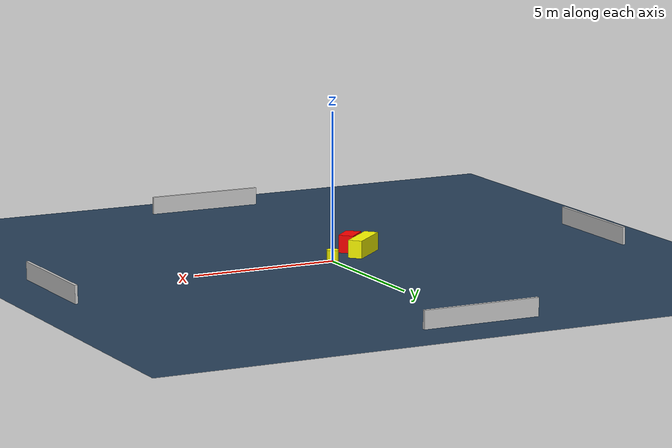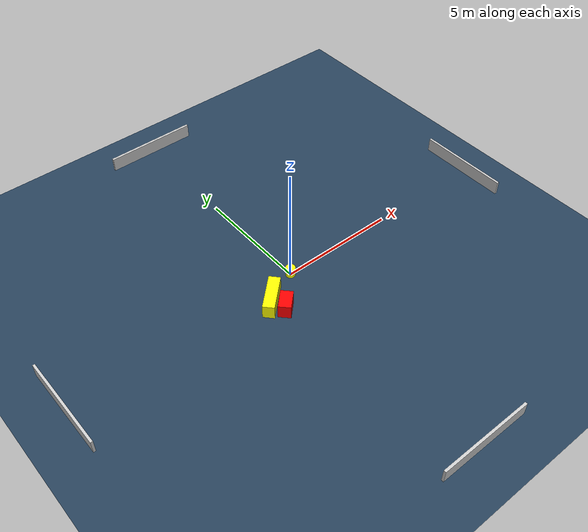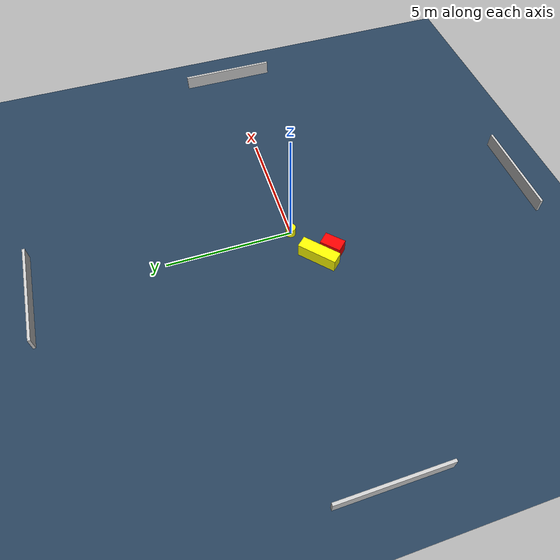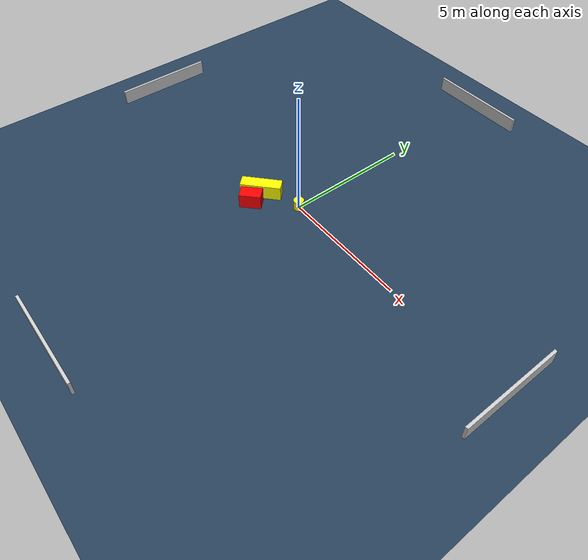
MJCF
<?xml version="1.0" ?>
<mujoco model="generated_environment">
  <option timestep="0.01" integrator="RK4" cone="elliptic"/>
  <default>
    <geom density="1"/>
  </default>
  <asset>
    <texture builtin="gradient" height="3072" name="skybox" rgb1="0.3 0.5 0.7" rgb2="0 0 0" type="skybox" width="512"/>
    <texture builtin="checker" height="300" name="groundplane" rgb1="0.2 0.3 0.4" rgb2="0.1 0.2 0.3" type="2d" width="300"/>
    <material name="groundplane" reflectance="0.2" texrepeat="5 5" texture="groundplane"/>
  </asset>
  <worldbody>
    <light dir="0 0 -1" directional="true" pos="0 0 1.5"/>
    <geom condim="3" friction="0.5 0.005 0.001" material="groundplane" name="floor" pos="0 0 0" size="0 0 0.05" type="plane"/>
    <body name="walls">
      <geom name="wall_1" condim="4" pos="-10.0 0.0 0.3" rgba="0.800000011920929 0.800000011920929 0.800000011920929 1.0" size="0.05 2.0 0.3" type="box"/>
      <geom name="wall_2" condim="4" pos="10.0 0.0 0.3" rgba="0.800000011920929 0.800000011920929 0.800000011920929 1.0" size="0.05 2.0 0.3" type="box"/>
      <geom name="wall_3" condim="4" pos="0.0 -10.0 0.3" rgba="0.800000011920929 0.800000011920929 0.800000011920929 1.0" size="2.0 0.05 0.3" type="box"/>
      <geom name="wall_4" condim="4" pos="0.0 10.0 0.3" rgba="0.800000011920929 0.800000011920929 0.800000011920929 1.0" size="2.0 0.05 0.3" type="box"/>
    </body>
    <body name="robot">
      <joint name="joint_x" type="slide" pos="0 0 0" axis="1 0 0"/>
      <joint name="joint_y" type="slide" pos="0 0 0" axis="0 1 0"/>
      <geom name="robot" type="cylinder" pos="0.0 0.0 0.2" size="0.2 0.2 0.0" mass="5.0" friction="1.0 0.005 0.0001" condim="4" rgba="1.0 1.0 0.0 1.0"/>
    </body>
    <body name="obstacle_1_movable">
      <geom name="obstacle_1_movable" condim="4" pos="-1.4768838994942113 -0.6582325555037863 0.3" euler="0 0 312.5125870882704" friction="0.0 0.005 0.001" rgba="1.0 1.0 0.0 1.0" size="0.23790414966197443 0.7855873062750862 0.3" type="box" mass="0.1"/>
      <joint type="free"/>
    </body>
    <body name="obstacle_2_static">
      <geom name="obstacle_2_static" condim="4" pos="-1.288750161581083 -1.2751654558986545 0.3" euler="0 0 313.9829052019853" friction="0.0 0.005 0.001" rgba="1.0 0.0 0.0 1.0" size="0.2553336812840397 0.4161127262421634 0.3" type="box"/>
    </body>
  </worldbody>
  <actuator>
    <motor name="actuator_x" joint="joint_x" gear="1" ctrlrange="-1 1"/>
    <motor name="actuator_y" joint="joint_y" gear="1" ctrlrange="-1 1"/>
  </actuator>
</mujoco>
